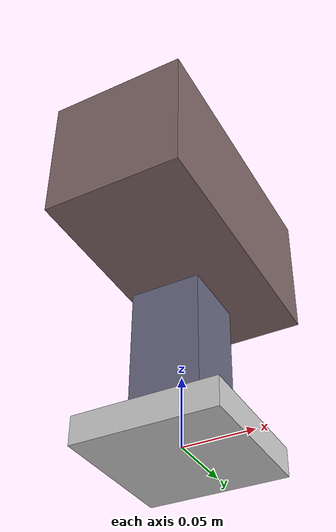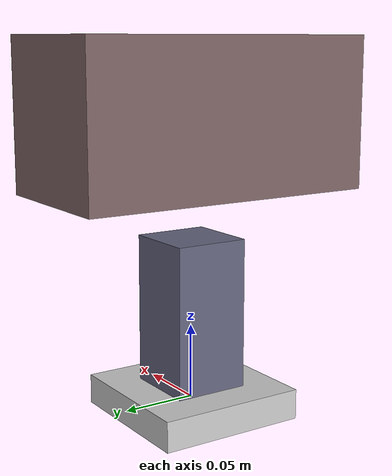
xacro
<?xml version="1.0" ?>
<robot name="swivel" xmlns:xacro="http://www.ros.org/wiki/xacro">

  <material name="SwivelWhite">    <color rgba="1.0 1.0 1.0 1"/></material>
  <material name="SwivelLightGray"><color rgba="0.8 0.8 0.8 1"/></material>
  <material name="SwivelMedGray">  <color rgba="0.6 0.6 0.6 1"/></material>
  <material name="SwivelDarkGray"> <color rgba="0.4 0.4 0.4 1"/></material>
  <material name="SwivelRed">      <color rgba="0.5 0.4 0.4 1"/></material>
  <material name="SwivelGreen">    <color rgba="0.4 0.5 0.4 1"/></material>
  <material name="SwivelBlue">     <color rgba="0.4 0.4 0.5 1"/></material>

  <!-- ros_control plugin  配套的gazebo控制插件-->
    <gazebo>
      <plugin name="gazebo_ros_control" filename="libgazebo_ros_control.so">
         <robotNamespace>/swivel</robotNamespace>
        <controlPeriod>0.01</controlPeriod>
        <robotSimType>gazebo_ros_control/DefaultRobotHWSim</robotSimType>
      </plugin>
    </gazebo>

  <link name="base">
    <visual>
      <origin xyz="0 0 0" rpy="0 0 0" />
      <geometry >
				<box size="0.1 0.1 0.02" />
      </geometry>
        <material name="SwivelLightGray" />
    </visual>
        <!-- gazebo里collision必须有 碰撞属性 -->
    <collision>
      <origin xyz="0 0 0" rpy="0 0 0" />
      <geometry >
				<box size="0.1 0.1 0.02" />
      </geometry>
    </collision>
            <!-- gazebo里inertial必须有 惯性属性 -->
     <inertial>
        <mass value="9"/>
        <inertia ixx="9.0" ixy="0.0" ixz="0.0" iyy="9.0" iyz="0.0" izz="9.0"/>
      </inertial>
  </link>
    <!-- gazebo里加载 相应link -->
  <gazebo reference="base">
       <material>Gazebo/Gray</material>
  </gazebo>

  <!-- 竖轴 link_1  长立方体 蓝色  可绕底盘z轴转360度  -->
  <link name="link_1">
    <visual>
      <origin xyz="0 0 0.06" rpy="0 0 0" />
      <geometry >
	      <box size="0.05 0.05 0.1" />
      </geometry>
      <material name="SwivelBlue" />
     </visual>
     <!-- gazebo里collision必须有 碰撞属性 -->
    <collision>
      <origin xyz="0 0 0.06" rpy="0 0 0" />
      <geometry >
	      <box size="0.05 0.05 0.1" />
      </geometry>
    </collision>
                <!-- gazebo里inertial必须有 惯性属性 -->
     <inertial>
        <mass value="4"/>
        <inertia ixx="4.0" ixy="0.0" ixz="0.0" iyy="4.0" iyz="0.0" izz="4.0"/>
      </inertial>
  </link>
  <gazebo reference="link_1">
       <material>Gazebo/Blue</material>
  </gazebo>

    <!-- 底盘与竖轴的joint swivel_J0  -->
  <joint name="swivel_J0" type="revolute"> <!-- revolute 旋转关节 -->
    <parent link="base"/>
    <child link="link_1"/>
    <origin xyz="0 0 0" rpy="0 0 0" />
    <axis xyz="0 0 1" /> <!-- 旋转轴为z轴 -->
    <limit lower="0" upper="6.28" effort="10"
	   velocity="1.0" /> <!-- 旋转角度范围为0-360度 单向旋转 -->
    <joint_properties damping="0.0" friction="0.0"/>
  </joint>
    <!-- gazebo里加载 相应joint -->
    <gazebo reference="swivel_J0">
    <provideFeedback>true</provideFeedback>
    </gazebo>

   <!-- 传动装置 tran1 ，joint ：swivel_J0 的  -->  <!--transmission的作用：在ROS中连接虚拟关节和实际电机的桥梁-->
 <transmission name="tran1"><!-- 名字自定义  -->
    <type>transmission_interface/SimpleTransmission</type>
    <joint name="swivel_J0"><!-- 名字必须与swivel_J0对应一致  -->
      <hardwareInterface>EffortJointInterface</hardwareInterface>
    </joint>
    <actuator name="motor1"><!-- 名字自定义  -->
      <hardwareInterface>EffortJointInterface</hardwareInterface>
      <mechanicalReduction>1</mechanicalReduction>
    </actuator>
  </transmission>

        <!-- 横轴 link_2  立方体 红色-->
  <link name="link_2">
    <visual>
      <origin xyz="0 0 0" rpy="0 0 0" />
      <geometry >
      	<box size="0.1 0.2 0.1" />
      </geometry>
      <material name="SwivelRed" />
    </visual>
  <collision>
      <origin xyz="0 0 0" rpy="0 0 0" />
      <geometry >
      	<box size="0.1 0.2 0.1" />
      </geometry>
    </collision>
        <inertial>
        <mass value="2"/>
        <inertia ixx="2.0" ixy="0.0" ixz="0.0" iyy="2.0" iyz="0.0" izz="2.0"/>
      </inertial>
  </link>
    <gazebo reference="link_2">
       <material>Gazebo/Red</material>
  </gazebo>

      <!-- 竖轴与横轴 的joint  做俯仰运动-->
  <joint name="swivel_J1" type="continuous"> <!-- continuous 连续关节 -->
    <parent link="link_1"/>
    <child link="link_2"/>
    <origin xyz="0 0 0.190" rpy="0 0 0" />
    <axis xyz="1 0 0" />
    <limit lower="-1.745" upper="2.356" effort="10"
	   velocity="1.0" />
    <joint_properties damping="0.0" friction="0.0"/>
  </joint>

  <!-- 传动装置 tran1 ，joint ：swivel_J1 的  -->
<transmission name="tran2"><!-- 名字自定义  -->
    <type>transmission_interface/SimpleTransmission</type>
    <joint name="swivel_J1"> <!-- 名字必须与swivel_J1对应一致  -->
      <hardwareInterface>EffortJointInterface</hardwareInterface>
    </joint>
    <actuator name="motor2"> <!-- 名字自定义  -->
      <hardwareInterface>EffortJointInterface</hardwareInterface>
      <mechanicalReduction>1</mechanicalReduction>
    </actuator>
  </transmission>

</robot>
